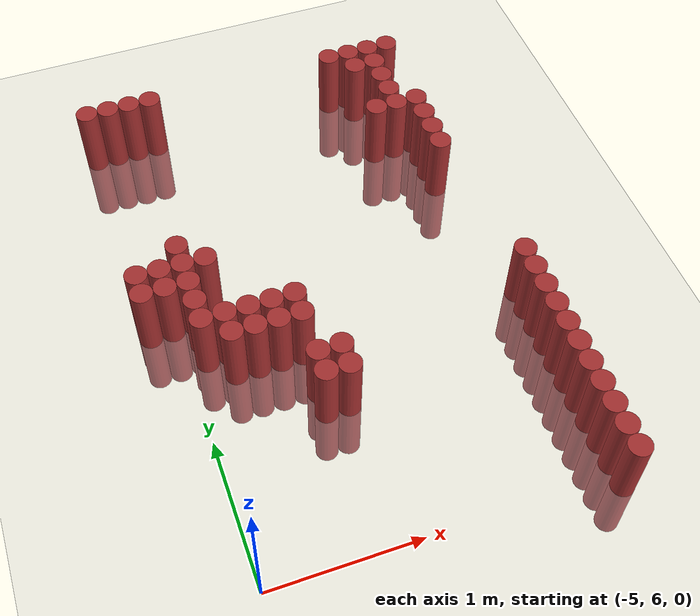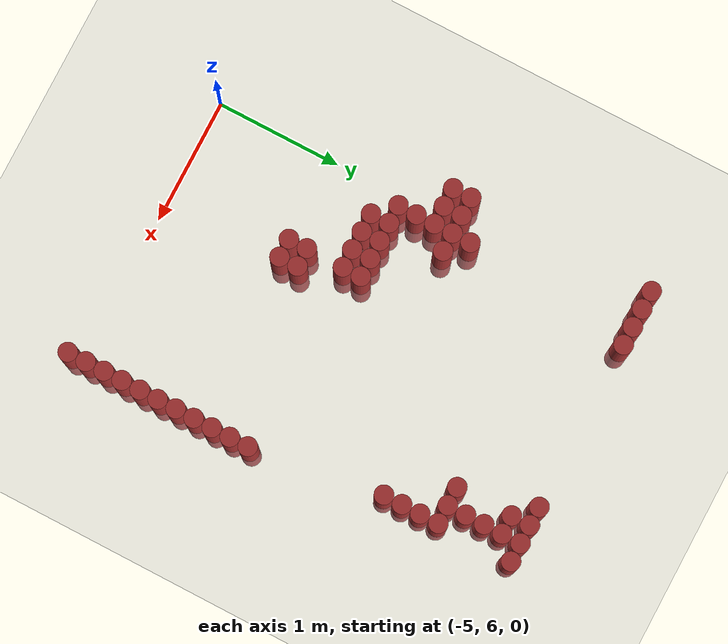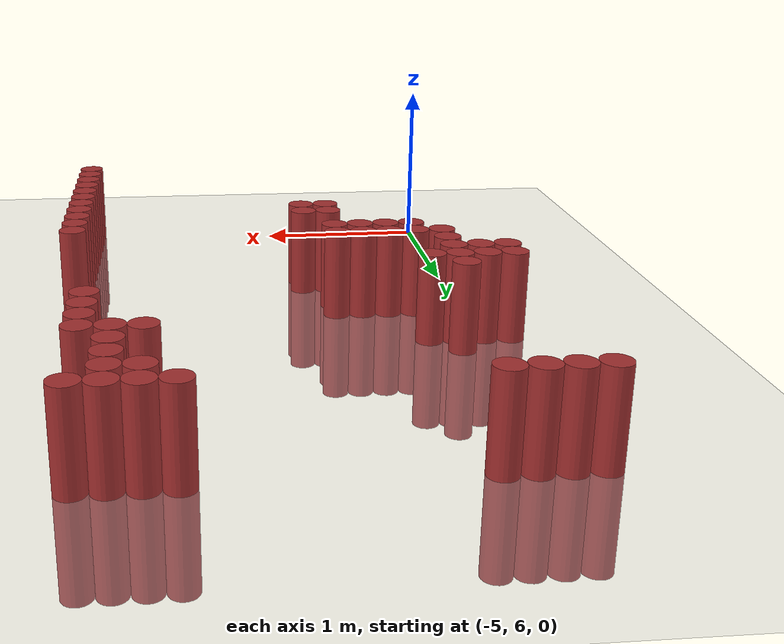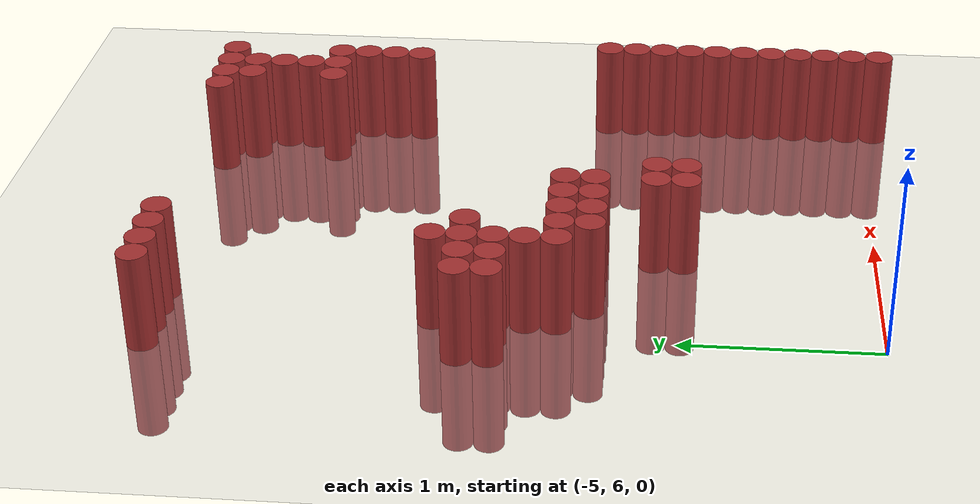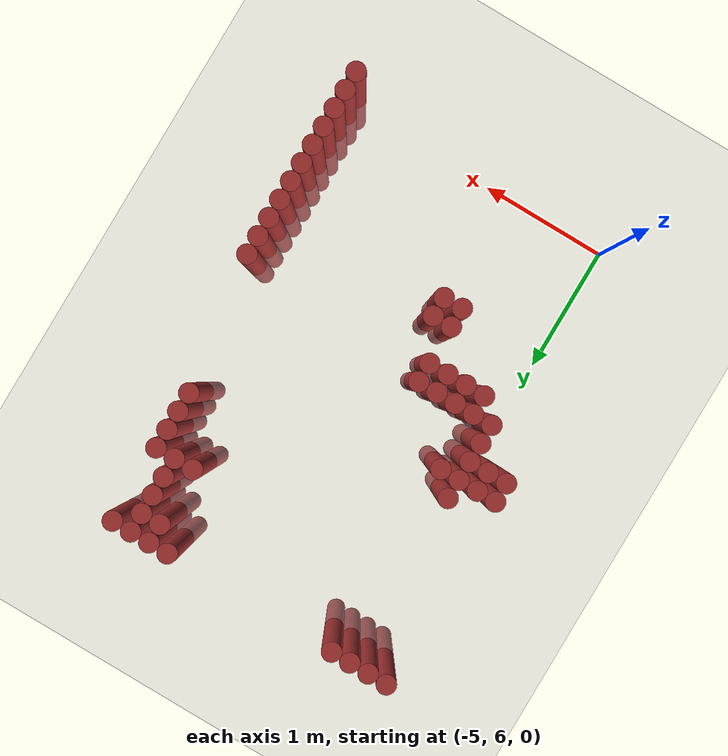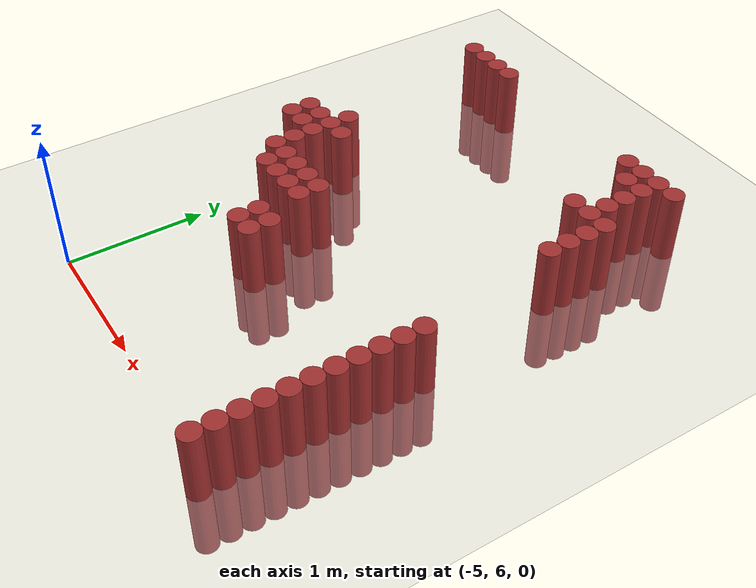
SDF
<sdf version="1.6">
 <world name="default">
  <model name="ground_plane">
   <static>1</static>
   <link name="link">
    <collision name="collision">
     <geometry><plane><normal>0 0 1</normal><size>100 100</size></plane></geometry>
     <surface><friction><ode><mu>100</mu><mu2>50</mu2></ode></friction></surface>
    </collision>
    <visual name="visual">
     <cast_shadows>0</cast_shadows>
     <geometry><plane><normal>0 0 1</normal><size>100 100</size></plane></geometry>
     <material>
      <script><uri>file://media/materials/scripts/gazebo.material</uri><name>Gazebo/Grey</name></script>
     </material>
    </visual>
   </link>
  </model>
  <model name="unit_cylinder_256">
   <static>1</static>
   <pose>-5.175000 7.875000 0.000000 0.000000 0.000000 0.000000</pose>
   <link name="link">
    <inertial>
     <mass>1</mass>
     <inertia><ixx>0.145833</ixx><ixy>0</ixy><ixz>0</ixz><iyy>0.145833</iyy><iyz>0</iyz><izz>0.125</izz></inertia>
    </inertial>
    <collision name="collision">
     <geometry><cylinder><radius>0.075000</radius><length>1</length></cylinder></geometry>
    </collision>
    <visual name="visual">
     <geometry><cylinder><radius>0.075000</radius><length>1</length></cylinder></geometry>
     <material>
      <ambient>0.648000 0.192000 0.192000 1</ambient>
      <diffuse>0.648000 0.192000 0.192000 1</diffuse>
     </material>
     <material>
      <script><name>Gazebo/Grey</name><uri>file://media/materials/scripts/gazebo.material</uri></script>
     </material>
    </visual>
   </link>
  </model>
  <model name="unit_cylinder_257">
   <static>1</static>
   <pose>-5.175000 8.025000 0.000000 0.000000 0.000000 0.000000</pose>
   <link name="link">
    <inertial>
     <mass>1</mass>
     <inertia><ixx>0.145833</ixx><ixy>0</ixy><ixz>0</ixz><iyy>0.145833</iyy><iyz>0</iyz><izz>0.125</izz></inertia>
    </inertial>
    <collision name="collision">
     <geometry><cylinder><radius>0.075000</radius><length>1</length></cylinder></geometry>
    </collision>
    <visual name="visual">
     <geometry><cylinder><radius>0.075000</radius><length>1</length></cylinder></geometry>
     <material>
      <ambient>0.648000 0.192000 0.192000 1</ambient>
      <diffuse>0.648000 0.192000 0.192000 1</diffuse>
     </material>
     <material>
      <script><name>Gazebo/Grey</name><uri>file://media/materials/scripts/gazebo.material</uri></script>
     </material>
    </visual>
   </link>
  </model>
  <model name="unit_cylinder_258">
   <static>1</static>
   <pose>-5.175000 9.525000 0.000000 0.000000 0.000000 0.000000</pose>
   <link name="link">
    <inertial>
     <mass>1</mass>
     <inertia><ixx>0.145833</ixx><ixy>0</ixy><ixz>0</ixz><iyy>0.145833</iyy><iyz>0</iyz><izz>0.125</izz></inertia>
    </inertial>
    <collision name="collision">
     <geometry><cylinder><radius>0.075000</radius><length>1</length></cylinder></geometry>
    </collision>
    <visual name="visual">
     <geometry><cylinder><radius>0.075000</radius><length>1</length></cylinder></geometry>
     <material>
      <ambient>0.648000 0.192000 0.192000 1</ambient>
      <diffuse>0.648000 0.192000 0.192000 1</diffuse>
     </material>
     <material>
      <script><name>Gazebo/Grey</name><uri>file://media/materials/scripts/gazebo.material</uri></script>
     </material>
    </visual>
   </link>
  </model>
  <model name="unit_cylinder_260">
   <static>1</static>
   <pose>-5.025000 7.875000 0.000000 0.000000 0.000000 0.000000</pose>
   <link name="link">
    <inertial>
     <mass>1</mass>
     <inertia><ixx>0.145833</ixx><ixy>0</ixy><ixz>0</ixz><iyy>0.145833</iyy><iyz>0</iyz><izz>0.125</izz></inertia>
    </inertial>
    <collision name="collision">
     <geometry><cylinder><radius>0.075000</radius><length>1</length></cylinder></geometry>
    </collision>
    <visual name="visual">
     <geometry><cylinder><radius>0.075000</radius><length>1</length></cylinder></geometry>
     <material>
      <ambient>0.648000 0.192000 0.192000 1</ambient>
      <diffuse>0.648000 0.192000 0.192000 1</diffuse>
     </material>
     <material>
      <script><name>Gazebo/Grey</name><uri>file://media/materials/scripts/gazebo.material</uri></script>
     </material>
    </visual>
   </link>
  </model>
  <model name="unit_cylinder_261">
   <static>1</static>
   <pose>-5.025000 8.025000 0.000000 0.000000 0.000000 0.000000</pose>
   <link name="link">
    <inertial>
     <mass>1</mass>
     <inertia><ixx>0.145833</ixx><ixy>0</ixy><ixz>0</ixz><iyy>0.145833</iyy><iyz>0</iyz><izz>0.125</izz></inertia>
    </inertial>
    <collision name="collision">
     <geometry><cylinder><radius>0.075000</radius><length>1</length></cylinder></geometry>
    </collision>
    <visual name="visual">
     <geometry><cylinder><radius>0.075000</radius><length>1</length></cylinder></geometry>
     <material>
      <ambient>0.648000 0.192000 0.192000 1</ambient>
      <diffuse>0.648000 0.192000 0.192000 1</diffuse>
     </material>
     <material>
      <script><name>Gazebo/Grey</name><uri>file://media/materials/scripts/gazebo.material</uri></script>
     </material>
    </visual>
   </link>
  </model>
  <model name="unit_cylinder_262">
   <static>1</static>
   <pose>-5.025000 9.525000 0.000000 0.000000 0.000000 0.000000</pose>
   <link name="link">
    <inertial>
     <mass>1</mass>
     <inertia><ixx>0.145833</ixx><ixy>0</ixy><ixz>0</ixz><iyy>0.145833</iyy><iyz>0</iyz><izz>0.125</izz></inertia>
    </inertial>
    <collision name="collision">
     <geometry><cylinder><radius>0.075000</radius><length>1</length></cylinder></geometry>
    </collision>
    <visual name="visual">
     <geometry><cylinder><radius>0.075000</radius><length>1</length></cylinder></geometry>
     <material>
      <ambient>0.648000 0.192000 0.192000 1</ambient>
      <diffuse>0.648000 0.192000 0.192000 1</diffuse>
     </material>
     <material>
      <script><name>Gazebo/Grey</name><uri>file://media/materials/scripts/gazebo.material</uri></script>
     </material>
    </visual>
   </link>
  </model>
  <model name="unit_cylinder_264">
   <static>1</static>
   <pose>-4.875000 7.575000 0.000000 0.000000 0.000000 0.000000</pose>
   <link name="link">
    <inertial>
     <mass>1</mass>
     <inertia><ixx>0.145833</ixx><ixy>0</ixy><ixz>0</ixz><iyy>0.145833</iyy><iyz>0</iyz><izz>0.125</izz></inertia>
    </inertial>
    <collision name="collision">
     <geometry><cylinder><radius>0.075000</radius><length>1</length></cylinder></geometry>
    </collision>
    <visual name="visual">
     <geometry><cylinder><radius>0.075000</radius><length>1</length></cylinder></geometry>
     <material>
      <ambient>0.648000 0.192000 0.192000 1</ambient>
      <diffuse>0.648000 0.192000 0.192000 1</diffuse>
     </material>
     <material>
      <script><name>Gazebo/Grey</name><uri>file://media/materials/scripts/gazebo.material</uri></script>
     </material>
    </visual>
   </link>
  </model>
  <model name="unit_cylinder_265">
   <static>1</static>
   <pose>-4.875000 7.725000 0.000000 0.000000 0.000000 0.000000</pose>
   <link name="link">
    <inertial>
     <mass>1</mass>
     <inertia><ixx>0.145833</ixx><ixy>0</ixy><ixz>0</ixz><iyy>0.145833</iyy><iyz>0</iyz><izz>0.125</izz></inertia>
    </inertial>
    <collision name="collision">
     <geometry><cylinder><radius>0.075000</radius><length>1</length></cylinder></geometry>
    </collision>
    <visual name="visual">
     <geometry><cylinder><radius>0.075000</radius><length>1</length></cylinder></geometry>
     <material>
      <ambient>0.648000 0.192000 0.192000 1</ambient>
      <diffuse>0.648000 0.192000 0.192000 1</diffuse>
     </material>
     <material>
      <script><name>Gazebo/Grey</name><uri>file://media/materials/scripts/gazebo.material</uri></script>
     </material>
    </visual>
   </link>
  </model>
  <model name="unit_cylinder_266">
   <static>1</static>
   <pose>-4.875000 7.875000 0.000000 0.000000 0.000000 0.000000</pose>
   <link name="link">
    <inertial>
     <mass>1</mass>
     <inertia><ixx>0.145833</ixx><ixy>0</ixy><ixz>0</ixz><iyy>0.145833</iyy><iyz>0</iyz><izz>0.125</izz></inertia>
    </inertial>
    <collision name="collision">
     <geometry><cylinder><radius>0.075000</radius><length>1</length></cylinder></geometry>
    </collision>
    <visual name="visual">
     <geometry><cylinder><radius>0.075000</radius><length>1</length></cylinder></geometry>
     <material>
      <ambient>0.648000 0.192000 0.192000 1</ambient>
      <diffuse>0.648000 0.192000 0.192000 1</diffuse>
     </material>
     <material>
      <script><name>Gazebo/Grey</name><uri>file://media/materials/scripts/gazebo.material</uri></script>
     </material>
    </visual>
   </link>
  </model>
  <model name="unit_cylinder_267">
   <static>1</static>
   <pose>-4.875000 8.025000 0.000000 0.000000 0.000000 0.000000</pose>
   <link name="link">
    <inertial>
     <mass>1</mass>
     <inertia><ixx>0.145833</ixx><ixy>0</ixy><ixz>0</ixz><iyy>0.145833</iyy><iyz>0</iyz><izz>0.125</izz></inertia>
    </inertial>
    <collision name="collision">
     <geometry><cylinder><radius>0.075000</radius><length>1</length></cylinder></geometry>
    </collision>
    <visual name="visual">
     <geometry><cylinder><radius>0.075000</radius><length>1</length></cylinder></geometry>
     <material>
      <ambient>0.648000 0.192000 0.192000 1</ambient>
      <diffuse>0.648000 0.192000 0.192000 1</diffuse>
     </material>
     <material>
      <script><name>Gazebo/Grey</name><uri>file://media/materials/scripts/gazebo.material</uri></script>
     </material>
    </visual>
   </link>
  </model>
  <model name="unit_cylinder_268">
   <static>1</static>
   <pose>-4.875000 8.175000 0.000000 0.000000 0.000000 0.000000</pose>
   <link name="link">
    <inertial>
     <mass>1</mass>
     <inertia><ixx>0.145833</ixx><ixy>0</ixy><ixz>0</ixz><iyy>0.145833</iyy><iyz>0</iyz><izz>0.125</izz></inertia>
    </inertial>
    <collision name="collision">
     <geometry><cylinder><radius>0.075000</radius><length>1</length></cylinder></geometry>
    </collision>
    <visual name="visual">
     <geometry><cylinder><radius>0.075000</radius><length>1</length></cylinder></geometry>
     <material>
      <ambient>0.648000 0.192000 0.192000 1</ambient>
      <diffuse>0.648000 0.192000 0.192000 1</diffuse>
     </material>
     <material>
      <script><name>Gazebo/Grey</name><uri>file://media/materials/scripts/gazebo.material</uri></script>
     </material>
    </visual>
   </link>
  </model>
  <model name="unit_cylinder_269">
   <static>1</static>
   <pose>-4.875000 9.525000 0.000000 0.000000 0.000000 0.000000</pose>
   <link name="link">
    <inertial>
     <mass>1</mass>
     <inertia><ixx>0.145833</ixx><ixy>0</ixy><ixz>0</ixz><iyy>0.145833</iyy><iyz>0</iyz><izz>0.125</izz></inertia>
    </inertial>
    <collision name="collision">
     <geometry><cylinder><radius>0.075000</radius><length>1</length></cylinder></geometry>
    </collision>
    <visual name="visual">
     <geometry><cylinder><radius>0.075000</radius><length>1</length></cylinder></geometry>
     <material>
      <ambient>0.648000 0.192000 0.192000 1</ambient>
      <diffuse>0.648000 0.192000 0.192000 1</diffuse>
     </material>
     <material>
      <script><name>Gazebo/Grey</name><uri>file://media/materials/scripts/gazebo.material</uri></script>
     </material>
    </visual>
   </link>
  </model>
  <model name="unit_cylinder_271">
   <static>1</static>
   <pose>-4.725000 7.425000 0.000000 0.000000 0.000000 0.000000</pose>
   <link name="link">
    <inertial>
     <mass>1</mass>
     <inertia><ixx>0.145833</ixx><ixy>0</ixy><ixz>0</ixz><iyy>0.145833</iyy><iyz>0</iyz><izz>0.125</izz></inertia>
    </inertial>
    <collision name="collision">
     <geometry><cylinder><radius>0.075000</radius><length>1</length></cylinder></geometry>
    </collision>
    <visual name="visual">
     <geometry><cylinder><radius>0.075000</radius><length>1</length></cylinder></geometry>
     <material>
      <ambient>0.648000 0.192000 0.192000 1</ambient>
      <diffuse>0.648000 0.192000 0.192000 1</diffuse>
     </material>
     <material>
      <script><name>Gazebo/Grey</name><uri>file://media/materials/scripts/gazebo.material</uri></script>
     </material>
    </visual>
   </link>
  </model>
  <model name="unit_cylinder_272">
   <static>1</static>
   <pose>-4.725000 7.575000 0.000000 0.000000 0.000000 0.000000</pose>
   <link name="link">
    <inertial>
     <mass>1</mass>
     <inertia><ixx>0.145833</ixx><ixy>0</ixy><ixz>0</ixz><iyy>0.145833</iyy><iyz>0</iyz><izz>0.125</izz></inertia>
    </inertial>
    <collision name="collision">
     <geometry><cylinder><radius>0.075000</radius><length>1</length></cylinder></geometry>
    </collision>
    <visual name="visual">
     <geometry><cylinder><radius>0.075000</radius><length>1</length></cylinder></geometry>
     <material>
      <ambient>0.648000 0.192000 0.192000 1</ambient>
      <diffuse>0.648000 0.192000 0.192000 1</diffuse>
     </material>
     <material>
      <script><name>Gazebo/Grey</name><uri>file://media/materials/scripts/gazebo.material</uri></script>
     </material>
    </visual>
   </link>
  </model>
  <model name="unit_cylinder_273">
   <static>1</static>
   <pose>-4.725000 8.025000 0.000000 0.000000 0.000000 0.000000</pose>
   <link name="link">
    <inertial>
     <mass>1</mass>
     <inertia><ixx>0.145833</ixx><ixy>0</ixy><ixz>0</ixz><iyy>0.145833</iyy><iyz>0</iyz><izz>0.125</izz></inertia>
    </inertial>
    <collision name="collision">
     <geometry><cylinder><radius>0.075000</radius><length>1</length></cylinder></geometry>
    </collision>
    <visual name="visual">
     <geometry><cylinder><radius>0.075000</radius><length>1</length></cylinder></geometry>
     <material>
      <ambient>0.648000 0.192000 0.192000 1</ambient>
      <diffuse>0.648000 0.192000 0.192000 1</diffuse>
     </material>
     <material>
      <script><name>Gazebo/Grey</name><uri>file://media/materials/scripts/gazebo.material</uri></script>
     </material>
    </visual>
   </link>
  </model>
  <model name="unit_cylinder_274">
   <static>1</static>
   <pose>-4.725000 9.525000 0.000000 0.000000 0.000000 0.000000</pose>
   <link name="link">
    <inertial>
     <mass>1</mass>
     <inertia><ixx>0.145833</ixx><ixy>0</ixy><ixz>0</ixz><iyy>0.145833</iyy><iyz>0</iyz><izz>0.125</izz></inertia>
    </inertial>
    <collision name="collision">
     <geometry><cylinder><radius>0.075000</radius><length>1</length></cylinder></geometry>
    </collision>
    <visual name="visual">
     <geometry><cylinder><radius>0.075000</radius><length>1</length></cylinder></geometry>
     <material>
      <ambient>0.648000 0.192000 0.192000 1</ambient>
      <diffuse>0.648000 0.192000 0.192000 1</diffuse>
     </material>
     <material>
      <script><name>Gazebo/Grey</name><uri>file://media/materials/scripts/gazebo.material</uri></script>
     </material>
    </visual>
   </link>
  </model>
  <model name="unit_cylinder_276">
   <static>1</static>
   <pose>-4.575000 7.425000 0.000000 0.000000 0.000000 0.000000</pose>
   <link name="link">
    <inertial>
     <mass>1</mass>
     <inertia><ixx>0.145833</ixx><ixy>0</ixy><ixz>0</ixz><iyy>0.145833</iyy><iyz>0</iyz><izz>0.125</izz></inertia>
    </inertial>
    <collision name="collision">
     <geometry><cylinder><radius>0.075000</radius><length>1</length></cylinder></geometry>
    </collision>
    <visual name="visual">
     <geometry><cylinder><radius>0.075000</radius><length>1</length></cylinder></geometry>
     <material>
      <ambient>0.648000 0.192000 0.192000 1</ambient>
      <diffuse>0.648000 0.192000 0.192000 1</diffuse>
     </material>
     <material>
      <script><name>Gazebo/Grey</name><uri>file://media/materials/scripts/gazebo.material</uri></script>
     </material>
    </visual>
   </link>
  </model>
  <model name="unit_cylinder_277">
   <static>1</static>
   <pose>-4.575000 7.575000 0.000000 0.000000 0.000000 0.000000</pose>
   <link name="link">
    <inertial>
     <mass>1</mass>
     <inertia><ixx>0.145833</ixx><ixy>0</ixy><ixz>0</ixz><iyy>0.145833</iyy><iyz>0</iyz><izz>0.125</izz></inertia>
    </inertial>
    <collision name="collision">
     <geometry><cylinder><radius>0.075000</radius><length>1</length></cylinder></geometry>
    </collision>
    <visual name="visual">
     <geometry><cylinder><radius>0.075000</radius><length>1</length></cylinder></geometry>
     <material>
      <ambient>0.648000 0.192000 0.192000 1</ambient>
      <diffuse>0.648000 0.192000 0.192000 1</diffuse>
     </material>
     <material>
      <script><name>Gazebo/Grey</name><uri>file://media/materials/scripts/gazebo.material</uri></script>
     </material>
    </visual>
   </link>
  </model>
  <model name="unit_cylinder_279">
   <static>1</static>
   <pose>-4.425000 7.425000 0.000000 0.000000 0.000000 0.000000</pose>
   <link name="link">
    <inertial>
     <mass>1</mass>
     <inertia><ixx>0.145833</ixx><ixy>0</ixy><ixz>0</ixz><iyy>0.145833</iyy><iyz>0</iyz><izz>0.125</izz></inertia>
    </inertial>
    <collision name="collision">
     <geometry><cylinder><radius>0.075000</radius><length>1</length></cylinder></geometry>
    </collision>
    <visual name="visual">
     <geometry><cylinder><radius>0.075000</radius><length>1</length></cylinder></geometry>
     <material>
      <ambient>0.648000 0.192000 0.192000 1</ambient>
      <diffuse>0.648000 0.192000 0.192000 1</diffuse>
     </material>
     <material>
      <script><name>Gazebo/Grey</name><uri>file://media/materials/scripts/gazebo.material</uri></script>
     </material>
    </visual>
   </link>
  </model>
  <model name="unit_cylinder_280">
   <static>1</static>
   <pose>-4.425000 7.575000 0.000000 0.000000 0.000000 0.000000</pose>
   <link name="link">
    <inertial>
     <mass>1</mass>
     <inertia><ixx>0.145833</ixx><ixy>0</ixy><ixz>0</ixz><iyy>0.145833</iyy><iyz>0</iyz><izz>0.125</izz></inertia>
    </inertial>
    <collision name="collision">
     <geometry><cylinder><radius>0.075000</radius><length>1</length></cylinder></geometry>
    </collision>
    <visual name="visual">
     <geometry><cylinder><radius>0.075000</radius><length>1</length></cylinder></geometry>
     <material>
      <ambient>0.648000 0.192000 0.192000 1</ambient>
      <diffuse>0.648000 0.192000 0.192000 1</diffuse>
     </material>
     <material>
      <script><name>Gazebo/Grey</name><uri>file://media/materials/scripts/gazebo.material</uri></script>
     </material>
    </visual>
   </link>
  </model>
  <model name="unit_cylinder_282">
   <static>1</static>
   <pose>-4.275000 6.975000 0.000000 0.000000 0.000000 0.000000</pose>
   <link name="link">
    <inertial>
     <mass>1</mass>
     <inertia><ixx>0.145833</ixx><ixy>0</ixy><ixz>0</ixz><iyy>0.145833</iyy><iyz>0</iyz><izz>0.125</izz></inertia>
    </inertial>
    <collision name="collision">
     <geometry><cylinder><radius>0.075000</radius><length>1</length></cylinder></geometry>
    </collision>
    <visual name="visual">
     <geometry><cylinder><radius>0.075000</radius><length>1</length></cylinder></geometry>
     <material>
      <ambient>0.648000 0.192000 0.192000 1</ambient>
      <diffuse>0.648000 0.192000 0.192000 1</diffuse>
     </material>
     <material>
      <script><name>Gazebo/Grey</name><uri>file://media/materials/scripts/gazebo.material</uri></script>
     </material>
    </visual>
   </link>
  </model>
  <model name="unit_cylinder_283">
   <static>1</static>
   <pose>-4.275000 7.125000 0.000000 0.000000 0.000000 0.000000</pose>
   <link name="link">
    <inertial>
     <mass>1</mass>
     <inertia><ixx>0.145833</ixx><ixy>0</ixy><ixz>0</ixz><iyy>0.145833</iyy><iyz>0</iyz><izz>0.125</izz></inertia>
    </inertial>
    <collision name="collision">
     <geometry><cylinder><radius>0.075000</radius><length>1</length></cylinder></geometry>
    </collision>
    <visual name="visual">
     <geometry><cylinder><radius>0.075000</radius><length>1</length></cylinder></geometry>
     <material>
      <ambient>0.648000 0.192000 0.192000 1</ambient>
      <diffuse>0.648000 0.192000 0.192000 1</diffuse>
     </material>
     <material>
      <script><name>Gazebo/Grey</name><uri>file://media/materials/scripts/gazebo.material</uri></script>
     </material>
    </visual>
   </link>
  </model>
  <model name="unit_cylinder_284">
   <static>1</static>
   <pose>-4.275000 7.425000 0.000000 0.000000 0.000000 0.000000</pose>
   <link name="link">
    <inertial>
     <mass>1</mass>
     <inertia><ixx>0.145833</ixx><ixy>0</ixy><ixz>0</ixz><iyy>0.145833</iyy><iyz>0</iyz><izz>0.125</izz></inertia>
    </inertial>
    <collision name="collision">
     <geometry><cylinder><radius>0.075000</radius><length>1</length></cylinder></geometry>
    </collision>
    <visual name="visual">
     <geometry><cylinder><radius>0.075000</radius><length>1</length></cylinder></geometry>
     <material>
      <ambient>0.648000 0.192000 0.192000 1</ambient>
      <diffuse>0.648000 0.192000 0.192000 1</diffuse>
     </material>
     <material>
      <script><name>Gazebo/Grey</name><uri>file://media/materials/scripts/gazebo.material</uri></script>
     </material>
    </visual>
   </link>
  </model>
  <model name="unit_cylinder_285">
   <static>1</static>
   <pose>-4.275000 7.575000 0.000000 0.000000 0.000000 0.000000</pose>
   <link name="link">
    <inertial>
     <mass>1</mass>
     <inertia><ixx>0.145833</ixx><ixy>0</ixy><ixz>0</ixz><iyy>0.145833</iyy><iyz>0</iyz><izz>0.125</izz></inertia>
    </inertial>
    <collision name="collision">
     <geometry><cylinder><radius>0.075000</radius><length>1</length></cylinder></geometry>
    </collision>
    <visual name="visual">
     <geometry><cylinder><radius>0.075000</radius><length>1</length></cylinder></geometry>
     <material>
      <ambient>0.648000 0.192000 0.192000 1</ambient>
      <diffuse>0.648000 0.192000 0.192000 1</diffuse>
     </material>
     <material>
      <script><name>Gazebo/Grey</name><uri>file://media/materials/scripts/gazebo.material</uri></script>
     </material>
    </visual>
   </link>
  </model>
  <model name="unit_cylinder_287">
   <static>1</static>
   <pose>-4.125000 6.975000 0.000000 0.000000 0.000000 0.000000</pose>
   <link name="link">
    <inertial>
     <mass>1</mass>
     <inertia><ixx>0.145833</ixx><ixy>0</ixy><ixz>0</ixz><iyy>0.145833</iyy><iyz>0</iyz><izz>0.125</izz></inertia>
    </inertial>
    <collision name="collision">
     <geometry><cylinder><radius>0.075000</radius><length>1</length></cylinder></geometry>
    </collision>
    <visual name="visual">
     <geometry><cylinder><radius>0.075000</radius><length>1</length></cylinder></geometry>
     <material>
      <ambient>0.648000 0.192000 0.192000 1</ambient>
      <diffuse>0.648000 0.192000 0.192000 1</diffuse>
     </material>
     <material>
      <script><name>Gazebo/Grey</name><uri>file://media/materials/scripts/gazebo.material</uri></script>
     </material>
    </visual>
   </link>
  </model>
  <model name="unit_cylinder_288">
   <static>1</static>
   <pose>-4.125000 7.125000 0.000000 0.000000 0.000000 0.000000</pose>
   <link name="link">
    <inertial>
     <mass>1</mass>
     <inertia><ixx>0.145833</ixx><ixy>0</ixy><ixz>0</ixz><iyy>0.145833</iyy><iyz>0</iyz><izz>0.125</izz></inertia>
    </inertial>
    <collision name="collision">
     <geometry><cylinder><radius>0.075000</radius><length>1</length></cylinder></geometry>
    </collision>
    <visual name="visual">
     <geometry><cylinder><radius>0.075000</radius><length>1</length></cylinder></geometry>
     <material>
      <ambient>0.648000 0.192000 0.192000 1</ambient>
      <diffuse>0.648000 0.192000 0.192000 1</diffuse>
     </material>
     <material>
      <script><name>Gazebo/Grey</name><uri>file://media/materials/scripts/gazebo.material</uri></script>
     </material>
    </visual>
   </link>
  </model>
  <model name="unit_cylinder_300">
   <static>1</static>
   <pose>-3.375000 9.525000 0.000000 0.000000 0.000000 0.000000</pose>
   <link name="link">
    <inertial>
     <mass>1</mass>
     <inertia><ixx>0.145833</ixx><ixy>0</ixy><ixz>0</ixz><iyy>0.145833</iyy><iyz>0</iyz><izz>0.125</izz></inertia>
    </inertial>
    <collision name="collision">
     <geometry><cylinder><radius>0.075000</radius><length>1</length></cylinder></geometry>
    </collision>
    <visual name="visual">
     <geometry><cylinder><radius>0.075000</radius><length>1</length></cylinder></geometry>
     <material>
      <ambient>0.648000 0.192000 0.192000 1</ambient>
      <diffuse>0.648000 0.192000 0.192000 1</diffuse>
     </material>
     <material>
      <script><name>Gazebo/Grey</name><uri>file://media/materials/scripts/gazebo.material</uri></script>
     </material>
    </visual>
   </link>
  </model>
  <model name="unit_cylinder_303">
   <static>1</static>
   <pose>-3.225000 8.925000 0.000000 0.000000 0.000000 0.000000</pose>
   <link name="link">
    <inertial>
     <mass>1</mass>
     <inertia><ixx>0.145833</ixx><ixy>0</ixy><ixz>0</ixz><iyy>0.145833</iyy><iyz>0</iyz><izz>0.125</izz></inertia>
    </inertial>
    <collision name="collision">
     <geometry><cylinder><radius>0.075000</radius><length>1</length></cylinder></geometry>
    </collision>
    <visual name="visual">
     <geometry><cylinder><radius>0.075000</radius><length>1</length></cylinder></geometry>
     <material>
      <ambient>0.648000 0.192000 0.192000 1</ambient>
      <diffuse>0.648000 0.192000 0.192000 1</diffuse>
     </material>
     <material>
      <script><name>Gazebo/Grey</name><uri>file://media/materials/scripts/gazebo.material</uri></script>
     </material>
    </visual>
   </link>
  </model>
  <model name="unit_cylinder_304">
   <static>1</static>
   <pose>-3.225000 9.375000 0.000000 0.000000 0.000000 0.000000</pose>
   <link name="link">
    <inertial>
     <mass>1</mass>
     <inertia><ixx>0.145833</ixx><ixy>0</ixy><ixz>0</ixz><iyy>0.145833</iyy><iyz>0</iyz><izz>0.125</izz></inertia>
    </inertial>
    <collision name="collision">
     <geometry><cylinder><radius>0.075000</radius><length>1</length></cylinder></geometry>
    </collision>
    <visual name="visual">
     <geometry><cylinder><radius>0.075000</radius><length>1</length></cylinder></geometry>
     <material>
      <ambient>0.648000 0.192000 0.192000 1</ambient>
      <diffuse>0.648000 0.192000 0.192000 1</diffuse>
     </material>
     <material>
      <script><name>Gazebo/Grey</name><uri>file://media/materials/scripts/gazebo.material</uri></script>
     </material>
    </visual>
   </link>
  </model>
  <model name="unit_cylinder_305">
   <static>1</static>
   <pose>-3.225000 9.525000 0.000000 0.000000 0.000000 0.000000</pose>
   <link name="link">
    <inertial>
     <mass>1</mass>
     <inertia><ixx>0.145833</ixx><ixy>0</ixy><ixz>0</ixz><iyy>0.145833</iyy><iyz>0</iyz><izz>0.125</izz></inertia>
    </inertial>
    <collision name="collision">
     <geometry><cylinder><radius>0.075000</radius><length>1</length></cylinder></geometry>
    </collision>
    <visual name="visual">
     <geometry><cylinder><radius>0.075000</radius><length>1</length></cylinder></geometry>
     <material>
      <ambient>0.648000 0.192000 0.192000 1</ambient>
      <diffuse>0.648000 0.192000 0.192000 1</diffuse>
     </material>
     <material>
      <script><name>Gazebo/Grey</name><uri>file://media/materials/scripts/gazebo.material</uri></script>
     </material>
    </visual>
   </link>
  </model>
  <model name="unit_cylinder_308">
   <static>1</static>
   <pose>-3.075000 8.925000 0.000000 0.000000 0.000000 0.000000</pose>
   <link name="link">
    <inertial>
     <mass>1</mass>
     <inertia><ixx>0.145833</ixx><ixy>0</ixy><ixz>0</ixz><iyy>0.145833</iyy><iyz>0</iyz><izz>0.125</izz></inertia>
    </inertial>
    <collision name="collision">
     <geometry><cylinder><radius>0.075000</radius><length>1</length></cylinder></geometry>
    </collision>
    <visual name="visual">
     <geometry><cylinder><radius>0.075000</radius><length>1</length></cylinder></geometry>
     <material>
      <ambient>0.648000 0.192000 0.192000 1</ambient>
      <diffuse>0.648000 0.192000 0.192000 1</diffuse>
     </material>
     <material>
      <script><name>Gazebo/Grey</name><uri>file://media/materials/scripts/gazebo.material</uri></script>
     </material>
    </visual>
   </link>
  </model>
  <model name="unit_cylinder_309">
   <static>1</static>
   <pose>-3.075000 9.075000 0.000000 0.000000 0.000000 0.000000</pose>
   <link name="link">
    <inertial>
     <mass>1</mass>
     <inertia><ixx>0.145833</ixx><ixy>0</ixy><ixz>0</ixz><iyy>0.145833</iyy><iyz>0</iyz><izz>0.125</izz></inertia>
    </inertial>
    <collision name="collision">
     <geometry><cylinder><radius>0.075000</radius><length>1</length></cylinder></geometry>
    </collision>
    <visual name="visual">
     <geometry><cylinder><radius>0.075000</radius><length>1</length></cylinder></geometry>
     <material>
      <ambient>0.648000 0.192000 0.192000 1</ambient>
      <diffuse>0.648000 0.192000 0.192000 1</diffuse>
     </material>
     <material>
      <script><name>Gazebo/Grey</name><uri>file://media/materials/scripts/gazebo.material</uri></script>
     </material>
    </visual>
   </link>
  </model>
  <model name="unit_cylinder_310">
   <static>1</static>
   <pose>-3.075000 9.225000 0.000000 0.000000 0.000000 0.000000</pose>
   <link name="link">
    <inertial>
     <mass>1</mass>
     <inertia><ixx>0.145833</ixx><ixy>0</ixy><ixz>0</ixz><iyy>0.145833</iyy><iyz>0</iyz><izz>0.125</izz></inertia>
    </inertial>
    <collision name="collision">
     <geometry><cylinder><radius>0.075000</radius><length>1</length></cylinder></geometry>
    </collision>
    <visual name="visual">
     <geometry><cylinder><radius>0.075000</radius><length>1</length></cylinder></geometry>
     <material>
      <ambient>0.648000 0.192000 0.192000 1</ambient>
      <diffuse>0.648000 0.192000 0.192000 1</diffuse>
     </material>
     <material>
      <script><name>Gazebo/Grey</name><uri>file://media/materials/scripts/gazebo.material</uri></script>
     </material>
    </visual>
   </link>
  </model>
  <model name="unit_cylinder_311">
   <static>1</static>
   <pose>-3.075000 9.375000 0.000000 0.000000 0.000000 0.000000</pose>
   <link name="link">
    <inertial>
     <mass>1</mass>
     <inertia><ixx>0.145833</ixx><ixy>0</ixy><ixz>0</ixz><iyy>0.145833</iyy><iyz>0</iyz><izz>0.125</izz></inertia>
    </inertial>
    <collision name="collision">
     <geometry><cylinder><radius>0.075000</radius><length>1</length></cylinder></geometry>
    </collision>
    <visual name="visual">
     <geometry><cylinder><radius>0.075000</radius><length>1</length></cylinder></geometry>
     <material>
      <ambient>0.648000 0.192000 0.192000 1</ambient>
      <diffuse>0.648000 0.192000 0.192000 1</diffuse>
     </material>
     <material>
      <script><name>Gazebo/Grey</name><uri>file://media/materials/scripts/gazebo.material</uri></script>
     </material>
    </visual>
   </link>
  </model>
  <model name="unit_cylinder_312">
   <static>1</static>
   <pose>-3.075000 9.525000 0.000000 0.000000 0.000000 0.000000</pose>
   <link name="link">
    <inertial>
     <mass>1</mass>
     <inertia><ixx>0.145833</ixx><ixy>0</ixy><ixz>0</ixz><iyy>0.145833</iyy><iyz>0</iyz><izz>0.125</izz></inertia>
    </inertial>
    <collision name="collision">
     <geometry><cylinder><radius>0.075000</radius><length>1</length></cylinder></geometry>
    </collision>
    <visual name="visual">
     <geometry><cylinder><radius>0.075000</radius><length>1</length></cylinder></geometry>
     <material>
      <ambient>0.648000 0.192000 0.192000 1</ambient>
      <diffuse>0.648000 0.192000 0.192000 1</diffuse>
     </material>
     <material>
      <script><name>Gazebo/Grey</name><uri>file://media/materials/scripts/gazebo.material</uri></script>
     </material>
    </visual>
   </link>
  </model>
  <model name="unit_cylinder_315">
   <static>1</static>
   <pose>-2.925000 8.475000 0.000000 0.000000 0.000000 0.000000</pose>
   <link name="link">
    <inertial>
     <mass>1</mass>
     <inertia><ixx>0.145833</ixx><ixy>0</ixy><ixz>0</ixz><iyy>0.145833</iyy><iyz>0</iyz><izz>0.125</izz></inertia>
    </inertial>
    <collision name="collision">
     <geometry><cylinder><radius>0.075000</radius><length>1</length></cylinder></geometry>
    </collision>
    <visual name="visual">
     <geometry><cylinder><radius>0.075000</radius><length>1</length></cylinder></geometry>
     <material>
      <ambient>0.648000 0.192000 0.192000 1</ambient>
      <diffuse>0.648000 0.192000 0.192000 1</diffuse>
     </material>
     <material>
      <script><name>Gazebo/Grey</name><uri>file://media/materials/scripts/gazebo.material</uri></script>
     </material>
    </visual>
   </link>
  </model>
  <model name="unit_cylinder_316">
   <static>1</static>
   <pose>-2.925000 8.625000 0.000000 0.000000 0.000000 0.000000</pose>
   <link name="link">
    <inertial>
     <mass>1</mass>
     <inertia><ixx>0.145833</ixx><ixy>0</ixy><ixz>0</ixz><iyy>0.145833</iyy><iyz>0</iyz><izz>0.125</izz></inertia>
    </inertial>
    <collision name="collision">
     <geometry><cylinder><radius>0.075000</radius><length>1</length></cylinder></geometry>
    </collision>
    <visual name="visual">
     <geometry><cylinder><radius>0.075000</radius><length>1</length></cylinder></geometry>
     <material>
      <ambient>0.648000 0.192000 0.192000 1</ambient>
      <diffuse>0.648000 0.192000 0.192000 1</diffuse>
     </material>
     <material>
      <script><name>Gazebo/Grey</name><uri>file://media/materials/scripts/gazebo.material</uri></script>
     </material>
    </visual>
   </link>
  </model>
  <model name="unit_cylinder_317">
   <static>1</static>
   <pose>-2.925000 8.775000 0.000000 0.000000 0.000000 0.000000</pose>
   <link name="link">
    <inertial>
     <mass>1</mass>
     <inertia><ixx>0.145833</ixx><ixy>0</ixy><ixz>0</ixz><iyy>0.145833</iyy><iyz>0</iyz><izz>0.125</izz></inertia>
    </inertial>
    <collision name="collision">
     <geometry><cylinder><radius>0.075000</radius><length>1</length></cylinder></geometry>
    </collision>
    <visual name="visual">
     <geometry><cylinder><radius>0.075000</radius><length>1</length></cylinder></geometry>
     <material>
      <ambient>0.648000 0.192000 0.192000 1</ambient>
      <diffuse>0.648000 0.192000 0.192000 1</diffuse>
     </material>
     <material>
      <script><name>Gazebo/Grey</name><uri>file://media/materials/scripts/gazebo.material</uri></script>
     </material>
    </visual>
   </link>
  </model>
  <model name="unit_cylinder_318">
   <static>1</static>
   <pose>-2.925000 8.925000 0.000000 0.000000 0.000000 0.000000</pose>
   <link name="link">
    <inertial>
     <mass>1</mass>
     <inertia><ixx>0.145833</ixx><ixy>0</ixy><ixz>0</ixz><iyy>0.145833</iyy><iyz>0</iyz><izz>0.125</izz></inertia>
    </inertial>
    <collision name="collision">
     <geometry><cylinder><radius>0.075000</radius><length>1</length></cylinder></geometry>
    </collision>
    <visual name="visual">
     <geometry><cylinder><radius>0.075000</radius><length>1</length></cylinder></geometry>
     <material>
      <ambient>0.648000 0.192000 0.192000 1</ambient>
      <diffuse>0.648000 0.192000 0.192000 1</diffuse>
     </material>
     <material>
      <script><name>Gazebo/Grey</name><uri>file://media/materials/scripts/gazebo.material</uri></script>
     </material>
    </visual>
   </link>
  </model>
  <model name="unit_cylinder_319">
   <static>1</static>
   <pose>-2.925000 9.525000 0.000000 0.000000 0.000000 0.000000</pose>
   <link name="link">
    <inertial>
     <mass>1</mass>
     <inertia><ixx>0.145833</ixx><ixy>0</ixy><ixz>0</ixz><iyy>0.145833</iyy><iyz>0</iyz><izz>0.125</izz></inertia>
    </inertial>
    <collision name="collision">
     <geometry><cylinder><radius>0.075000</radius><length>1</length></cylinder></geometry>
    </collision>
    <visual name="visual">
     <geometry><cylinder><radius>0.075000</radius><length>1</length></cylinder></geometry>
     <material>
      <ambient>0.648000 0.192000 0.192000 1</ambient>
      <diffuse>0.648000 0.192000 0.192000 1</diffuse>
     </material>
     <material>
      <script><name>Gazebo/Grey</name><uri>file://media/materials/scripts/gazebo.material</uri></script>
     </material>
    </visual>
   </link>
  </model>
  <model name="unit_cylinder_323">
   <static>1</static>
   <pose>-2.775000 5.925000 0.000000 0.000000 0.000000 0.000000</pose>
   <link name="link">
    <inertial>
     <mass>1</mass>
     <inertia><ixx>0.145833</ixx><ixy>0</ixy><ixz>0</ixz><iyy>0.145833</iyy><iyz>0</iyz><izz>0.125</izz></inertia>
    </inertial>
    <collision name="collision">
     <geometry><cylinder><radius>0.075000</radius><length>1</length></cylinder></geometry>
    </collision>
    <visual name="visual">
     <geometry><cylinder><radius>0.075000</radius><length>1</length></cylinder></geometry>
     <material>
      <ambient>0.648000 0.192000 0.192000 1</ambient>
      <diffuse>0.648000 0.192000 0.192000 1</diffuse>
     </material>
     <material>
      <script><name>Gazebo/Grey</name><uri>file://media/materials/scripts/gazebo.material</uri></script>
     </material>
    </visual>
   </link>
  </model>
  <model name="unit_cylinder_324">
   <static>1</static>
   <pose>-2.775000 6.075000 0.000000 0.000000 0.000000 0.000000</pose>
   <link name="link">
    <inertial>
     <mass>1</mass>
     <inertia><ixx>0.145833</ixx><ixy>0</ixy><ixz>0</ixz><iyy>0.145833</iyy><iyz>0</iyz><izz>0.125</izz></inertia>
    </inertial>
    <collision name="collision">
     <geometry><cylinder><radius>0.075000</radius><length>1</length></cylinder></geometry>
    </collision>
    <visual name="visual">
     <geometry><cylinder><radius>0.075000</radius><length>1</length></cylinder></geometry>
     <material>
      <ambient>0.648000 0.192000 0.192000 1</ambient>
      <diffuse>0.648000 0.192000 0.192000 1</diffuse>
     </material>
     <material>
      <script><name>Gazebo/Grey</name><uri>file://media/materials/scripts/gazebo.material</uri></script>
     </material>
    </visual>
   </link>
  </model>
  <model name="unit_cylinder_325">
   <static>1</static>
   <pose>-2.775000 6.225000 0.000000 0.000000 0.000000 0.000000</pose>
   <link name="link">
    <inertial>
     <mass>1</mass>
     <inertia><ixx>0.145833</ixx><ixy>0</ixy><ixz>0</ixz><iyy>0.145833</iyy><iyz>0</iyz><izz>0.125</izz></inertia>
    </inertial>
    <collision name="collision">
     <geometry><cylinder><radius>0.075000</radius><length>1</length></cylinder></geometry>
    </collision>
    <visual name="visual">
     <geometry><cylinder><radius>0.075000</radius><length>1</length></cylinder></geometry>
     <material>
      <ambient>0.648000 0.192000 0.192000 1</ambient>
      <diffuse>0.648000 0.192000 0.192000 1</diffuse>
     </material>
     <material>
      <script><name>Gazebo/Grey</name><uri>file://media/materials/scripts/gazebo.material</uri></script>
     </material>
    </visual>
   </link>
  </model>
  <model name="unit_cylinder_326">
   <static>1</static>
   <pose>-2.775000 6.375000 0.000000 0.000000 0.000000 0.000000</pose>
   <link name="link">
    <inertial>
     <mass>1</mass>
     <inertia><ixx>0.145833</ixx><ixy>0</ixy><ixz>0</ixz><iyy>0.145833</iyy><iyz>0</iyz><izz>0.125</izz></inertia>
    </inertial>
    <collision name="collision">
     <geometry><cylinder><radius>0.075000</radius><length>1</length></cylinder></geometry>
    </collision>
    <visual name="visual">
     <geometry><cylinder><radius>0.075000</radius><length>1</length></cylinder></geometry>
     <material>
      <ambient>0.648000 0.192000 0.192000 1</ambient>
      <diffuse>0.648000 0.192000 0.192000 1</diffuse>
     </material>
     <material>
      <script><name>Gazebo/Grey</name><uri>file://media/materials/scripts/gazebo.material</uri></script>
     </material>
    </visual>
   </link>
  </model>
  <model name="unit_cylinder_327">
   <static>1</static>
   <pose>-2.775000 6.525000 0.000000 0.000000 0.000000 0.000000</pose>
   <link name="link">
    <inertial>
     <mass>1</mass>
     <inertia><ixx>0.145833</ixx><ixy>0</ixy><ixz>0</ixz><iyy>0.145833</iyy><iyz>0</iyz><izz>0.125</izz></inertia>
    </inertial>
    <collision name="collision">
     <geometry><cylinder><radius>0.075000</radius><length>1</length></cylinder></geometry>
    </collision>
    <visual name="visual">
     <geometry><cylinder><radius>0.075000</radius><length>1</length></cylinder></geometry>
     <material>
      <ambient>0.648000 0.192000 0.192000 1</ambient>
      <diffuse>0.648000 0.192000 0.192000 1</diffuse>
     </material>
     <material>
      <script><name>Gazebo/Grey</name><uri>file://media/materials/scripts/gazebo.material</uri></script>
     </material>
    </visual>
   </link>
  </model>
  <model name="unit_cylinder_328">
   <static>1</static>
   <pose>-2.775000 6.675000 0.000000 0.000000 0.000000 0.000000</pose>
   <link name="link">
    <inertial>
     <mass>1</mass>
     <inertia><ixx>0.145833</ixx><ixy>0</ixy><ixz>0</ixz><iyy>0.145833</iyy><iyz>0</iyz><izz>0.125</izz></inertia>
    </inertial>
    <collision name="collision">
     <geometry><cylinder><radius>0.075000</radius><length>1</length></cylinder></geometry>
    </collision>
    <visual name="visual">
     <geometry><cylinder><radius>0.075000</radius><length>1</length></cylinder></geometry>
     <material>
      <ambient>0.648000 0.192000 0.192000 1</ambient>
      <diffuse>0.648000 0.192000 0.192000 1</diffuse>
     </material>
     <material>
      <script><name>Gazebo/Grey</name><uri>file://media/materials/scripts/gazebo.material</uri></script>
     </material>
    </visual>
   </link>
  </model>
  <model name="unit_cylinder_329">
   <static>1</static>
   <pose>-2.775000 6.825000 0.000000 0.000000 0.000000 0.000000</pose>
   <link name="link">
    <inertial>
     <mass>1</mass>
     <inertia><ixx>0.145833</ixx><ixy>0</ixy><ixz>0</ixz><iyy>0.145833</iyy><iyz>0</iyz><izz>0.125</izz></inertia>
    </inertial>
    <collision name="collision">
     <geometry><cylinder><radius>0.075000</radius><length>1</length></cylinder></geometry>
    </collision>
    <visual name="visual">
     <geometry><cylinder><radius>0.075000</radius><length>1</length></cylinder></geometry>
     <material>
      <ambient>0.648000 0.192000 0.192000 1</ambient>
      <diffuse>0.648000 0.192000 0.192000 1</diffuse>
     </material>
     <material>
      <script><name>Gazebo/Grey</name><uri>file://media/materials/scripts/gazebo.material</uri></script>
     </material>
    </visual>
   </link>
  </model>
  <model name="unit_cylinder_330">
   <static>1</static>
   <pose>-2.775000 6.975000 0.000000 0.000000 0.000000 0.000000</pose>
   <link name="link">
    <inertial>
     <mass>1</mass>
     <inertia><ixx>0.145833</ixx><ixy>0</ixy><ixz>0</ixz><iyy>0.145833</iyy><iyz>0</iyz><izz>0.125</izz></inertia>
    </inertial>
    <collision name="collision">
     <geometry><cylinder><radius>0.075000</radius><length>1</length></cylinder></geometry>
    </collision>
    <visual name="visual">
     <geometry><cylinder><radius>0.075000</radius><length>1</length></cylinder></geometry>
     <material>
      <ambient>0.648000 0.192000 0.192000 1</ambient>
      <diffuse>0.648000 0.192000 0.192000 1</diffuse>
     </material>
     <material>
      <script><name>Gazebo/Grey</name><uri>file://media/materials/scripts/gazebo.material</uri></script>
     </material>
    </visual>
   </link>
  </model>
  <model name="unit_cylinder_331">
   <static>1</static>
   <pose>-2.775000 7.125000 0.000000 0.000000 0.000000 0.000000</pose>
   <link name="link">
    <inertial>
     <mass>1</mass>
     <inertia><ixx>0.145833</ixx><ixy>0</ixy><ixz>0</ixz><iyy>0.145833</iyy><iyz>0</iyz><izz>0.125</izz></inertia>
    </inertial>
    <collision name="collision">
     <geometry><cylinder><radius>0.075000</radius><length>1</length></cylinder></geometry>
    </collision>
    <visual name="visual">
     <geometry><cylinder><radius>0.075000</radius><length>1</length></cylinder></geometry>
     <material>
      <ambient>0.648000 0.192000 0.192000 1</ambient>
      <diffuse>0.648000 0.192000 0.192000 1</diffuse>
     </material>
     <material>
      <script><name>Gazebo/Grey</name><uri>file://media/materials/scripts/gazebo.material</uri></script>
     </material>
    </visual>
   </link>
  </model>
  <model name="unit_cylinder_332">
   <static>1</static>
   <pose>-2.775000 7.275000 0.000000 0.000000 0.000000 0.000000</pose>
   <link name="link">
    <inertial>
     <mass>1</mass>
     <inertia><ixx>0.145833</ixx><ixy>0</ixy><ixz>0</ixz><iyy>0.145833</iyy><iyz>0</iyz><izz>0.125</izz></inertia>
    </inertial>
    <collision name="collision">
     <geometry><cylinder><radius>0.075000</radius><length>1</length></cylinder></geometry>
    </collision>
    <visual name="visual">
     <geometry><cylinder><radius>0.075000</radius><length>1</length></cylinder></geometry>
     <material>
      <ambient>0.648000 0.192000 0.192000 1</ambient>
      <diffuse>0.648000 0.192000 0.192000 1</diffuse>
     </material>
     <material>
      <script><name>Gazebo/Grey</name><uri>file://media/materials/scripts/gazebo.material</uri></script>
     </material>
    </visual>
   </link>
  </model>
  <model name="unit_cylinder_333">
   <static>1</static>
   <pose>-2.775000 7.425000 0.000000 0.000000 0.000000 0.000000</pose>
   <link name="link">
    <inertial>
     <mass>1</mass>
     <inertia><ixx>0.145833</ixx><ixy>0</ixy><ixz>0</ixz><iyy>0.145833</iyy><iyz>0</iyz><izz>0.125</izz></inertia>
    </inertial>
    <collision name="collision">
     <geometry><cylinder><radius>0.075000</radius><length>1</length></cylinder></geometry>
    </collision>
    <visual name="visual">
     <geometry><cylinder><radius>0.075000</radius><length>1</length></cylinder></geometry>
     <material>
      <ambient>0.648000 0.192000 0.192000 1</ambient>
      <diffuse>0.648000 0.192000 0.192000 1</diffuse>
     </material>
     <material>
      <script><name>Gazebo/Grey</name><uri>file://media/materials/scripts/gazebo.material</uri></script>
     </material>
    </visual>
   </link>
  </model>
 </world>
</sdf>
